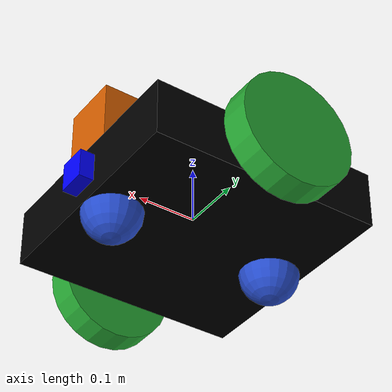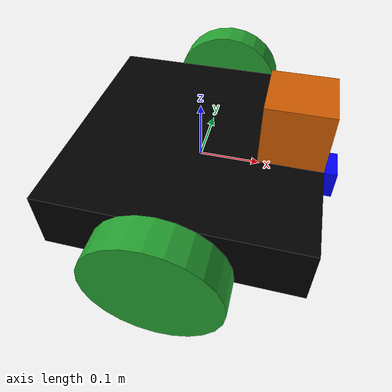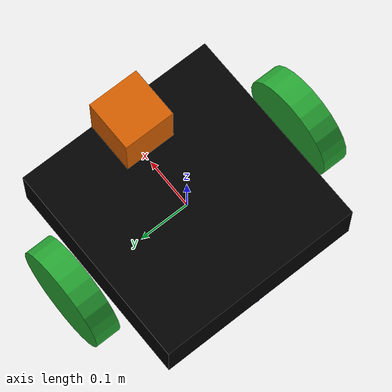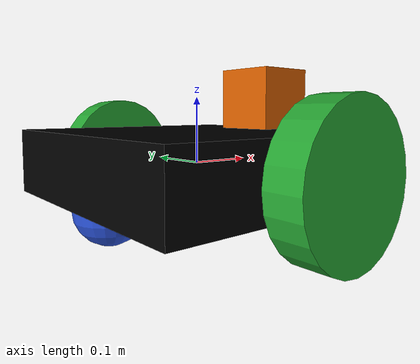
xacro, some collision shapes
<?xml version='1.0'?>

<robot name="fouliex_bot" xmlns:xacro="http://www.ros.org/wiki/xacro">
    <xacro:include filename="$(find fouliex_bot)/urdf/fouliex_bot.gazebo"/>
    <link name="robot_footprint"></link>

    <joint name="robot_footprint_joint" type="fixed">
        <origin xyz="0 0 0" rpy="0 0 0"/>
        <parent link="robot_footprint"/>
        <child link="chassis"/>
    </joint>

    <!-- Chassis Link -->

    <link name='chassis'>
        <pose>0 0 0.1 0 0 0</pose>

        <inertial>
            <mass value="15.0"/>
            <origin xyz="0.0 0 0" rpy=" 0 0 0"/>
            <inertia ixx="0.1" ixy="0" ixz="0" iyy="0.1" iyz="0" izz="0.1"/>
        </inertial>

        <collision name='collision'>
            <origin xyz="0 0 0" rpy=" 0 0 0"/>
            <geometry>
                <box size=".4 .4 .1"/>
            </geometry>
        </collision>

        <visual name='chassis_visual'>
            <origin xyz="0 0 0" rpy=" 0 0 0"/>
            <geometry>
                <box size=".4 .4 .1"/>
            </geometry>
            <material name="black">
                <color rgba="0 0 0 1"/>
            </material>
        </visual>

        <collision name='back_caster_collision'>
            <origin xyz="-0.15 0 -0.05" rpy=" 0 0 0"/>
            <geometry>
                <sphere radius="0.05"/>
            </geometry>
            <surface>
                <friction>
                    <ode>
                        <mu>0</mu>
                        <mu2>0</mu2>
                        <slip1>1.0</slip1>
                        <slip2>1.0</slip2>
                    </ode>
                </friction>
            </surface>
        </collision>

        <visual name='back_caster_visual'>
            <origin xyz="-0.15 0 -0.05" rpy=" 0 0 0"/>
            <geometry>
                <sphere radius="0.05"/>
            </geometry>
        </visual>

        <collision name='front_caster_collision'>
            <origin xyz="0.15 0 -0.05" rpy=" 0 0 0"/>
            <geometry>
                <sphere radius="0.05"/>
            </geometry>
            <surface>
                <friction>
                    <ode>
                        <mu>0</mu>
                        <mu2>0</mu2>
                        <slip1>1.0</slip1>
                        <slip2>1.0</slip2>
                    </ode>
                </friction>
            </surface>
        </collision>

        <visual name='front_caster_visual'>
            <origin xyz="0.15 0 -0.05" rpy=" 0 0 0"/>
            <geometry>
                <sphere radius="0.05"/>
            </geometry>
        </visual>

    </link>

    <!-- Left Wheel Link -->

    <link name='left_wheel'>
        <inertial>
            <mass value="5.0"/>
            <origin xyz="0.0 0 0" rpy=" 0 1.5707 1.5707"/>
            <inertia ixx="0.1" ixy="0" ixz="0" iyy="0.1" iyz="0" izz="0.1"/>
        </inertial>

        <collision name='collision'>
            <origin xyz="0.0 0 0" rpy=" 0 1.5707 1.5707"/>
            <geometry>
                <cylinder length="0.05" radius="0.1"/>
            </geometry>
        </collision>

        <visual name='wheel_visual'>
            <origin xyz="0.0 0 0" rpy=" 0 1.5707 1.5707"/>
            <geometry>
                <cylinder length="0.05" radius="0.1"/>
            </geometry>
        </visual>
    </link>

    <!-- Right Wheel Link -->

    <link name='right_wheel'>
        <inertial>
            <mass value="5.0"/>
            <origin xyz="0.0 0 0" rpy=" 0 1.5707 1.5707"/>
            <inertia ixx="0.1" ixy="0" ixz="0" iyy="0.1" iyz="0" izz="0.1"/>
        </inertial>

        <collision name='collision'>
            <origin xyz="0.0 0 0" rpy=" 0 1.5707 1.5707"/>
            <geometry>
                <cylinder length="0.05" radius="0.1"/>
            </geometry>
        </collision>

        <visual name='wheel_visual'>
            <origin xyz="0.0 0 0" rpy=" 0 1.5707 1.5707"/>
            <geometry>
                <cylinder length="0.05" radius="0.1"/>
            </geometry>
        </visual>
    </link>

    <!-- Left and Right Wheel Joints -->
    <joint type="continuous" name="left_wheel_hinge">
        <origin xyz="0.0 0.25 0" rpy="0 0 0"/>
        <child link="left_wheel"/>
        <parent link="chassis"/>
        <axis xyz="0 1 0" rpy="0 0 0"/>
        <limit effort="10000" velocity="1000"/>
        <joint_properties damping="1.0" friction="1.0"/>
    </joint>

    <joint type="continuous" name="right_wheel_hinge">
        <origin xyz="0 -0.25 0" rpy="0 0 0"/>
        <child link="right_wheel"/>
        <parent link="chassis"/>
        <axis xyz="0 1 0" rpy="0 0 0"/>
        <limit effort="10000" velocity="1000"/>
        <joint_properties damping="1.0" friction="1.0"/>
    </joint>

    <!-- Camera Link -->

    <link name="camera">

        <inertial>
            <mass value="0.1"/>
            <origin xyz="0 0 0" rpy="0 0 0"/>
            <inertia
                    ixx="1e-6" ixy="0" ixz="0"
                    iyy="1e-6" iyz="0"
                    izz="1e-6"
            />
        </inertial>
        <visual>
            <geometry>
                <box size="0.05 0.05 0.05"/>
            </geometry>
            <origin xyz="0 0 0" rpy="0 0 0"/>
            <material name="red">
                <color rgba="0 0 1 1"/>
            </material>
        </visual>
        <collision>
            <geometry>
                <box size="0.05 0.05 0.05"/>
            </geometry>
            <origin xyz="0 0 0" rpy="0 0 0"/>
        </collision>
    </link>

    <!-- Camera Joint -->
    <joint type="fixed" name="camera_joint">
        <origin xyz="0.2 0 0" rpy="0 0 0"/>
        <child link="camera"/>
        <parent link="chassis"/>
    </joint>

    <!-- Laser RangeFinder(hokuyo) Link -->

    <link name="hokuyo">

        <inertial>
            <mass value="0.1"/>
            <origin xyz="0 0 0" rpy="0 0 0"/>
            <inertia
                    ixx="1e-6" ixy="0" ixz="0"
                    iyy="1e-6" iyz="0"
                    izz="1e-6"
            />
        </inertial>
        <visual>
            <geometry>
                <mesh filename="package://fouliex_bot/meshes/hokuyo.dae"/>
            </geometry>
            <origin xyz="0 0 0" rpy="0 0 0"/>
        </visual>
        <collision>
            <geometry>
                <box size="0.1 0.1 0.1"/>
            </geometry>
            <origin xyz="0 0 0" rpy="0 0 0"/>
        </collision>
    </link>

    <!-- Laser RangeFinder(hokuyo) Link -->
    <joint type="fixed" name="hokuyo_joint">
        <origin xyz="0.15 0 0.1" rpy="0 0 0"/>
        <child link="hokuyo"/>
        <parent link="chassis"/>
    </joint>

</robot>
